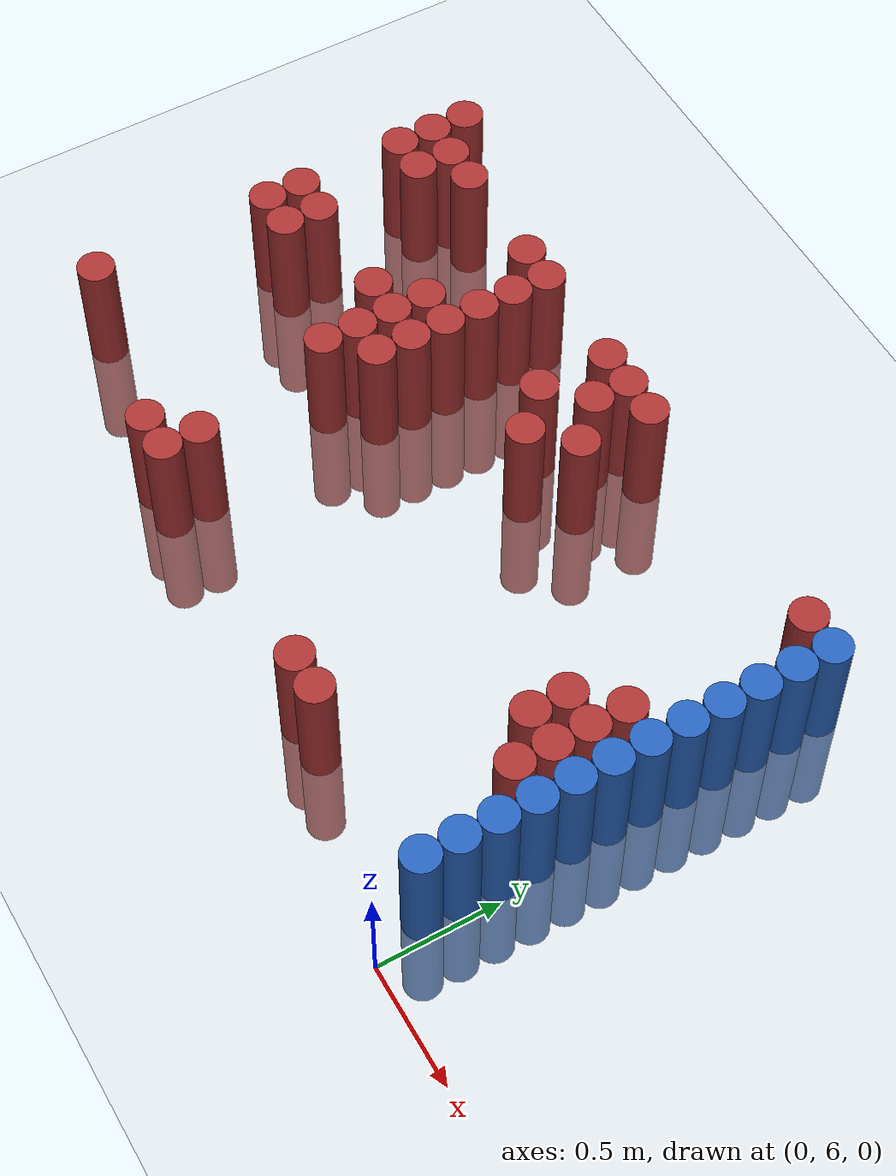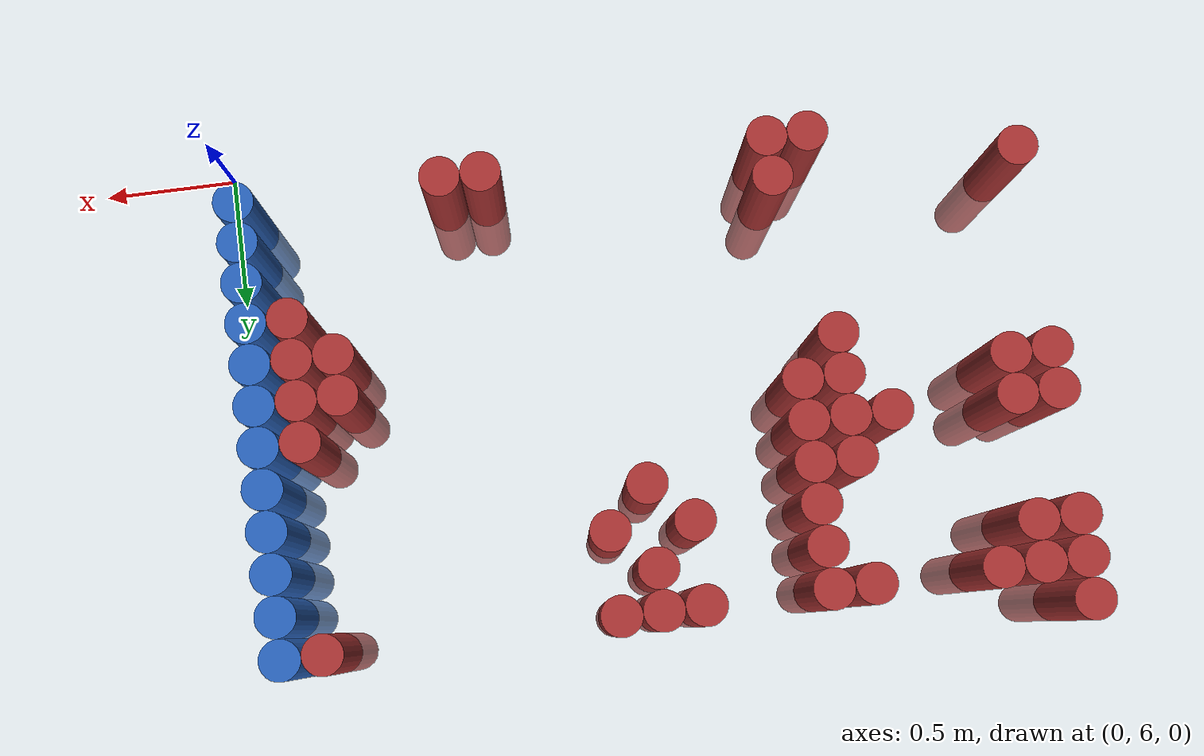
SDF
<sdf version="1.6">
 <world name="world_194">
  <model name="ground_plane">
   <static>1</static>
   <link name="link">
    <collision name="collision">
     <geometry><plane><normal>0 0 1</normal><size>100 100</size></plane></geometry>
     <surface><friction><ode><mu>100</mu><mu2>50</mu2></ode></friction></surface>
    </collision>
    <visual name="visual">
     <cast_shadows>0</cast_shadows>
     <geometry><plane><normal>0 0 1</normal><size>100 100</size></plane></geometry>
     <material>
      <script><uri>file://media/materials/scripts/gazebo.material</uri><name>Gazebo/Grey</name></script>
     </material>
    </visual>
   </link>
  </model>
  <model name="unit_cylinder_182">
   <static>1</static>
   <pose>-2.925000 6.375000 0.000000 0.000000 0.000000 0.000000</pose>
   <link name="link">
    <inertial>
     <mass>1</mass>
     <inertia><ixx>0.145833</ixx><ixy>0</ixy><ixz>0</ixz><iyy>0.145833</iyy><iyz>0</iyz><izz>0.125</izz></inertia>
    </inertial>
    <collision name="collision">
     <geometry><cylinder><radius>0.075000</radius><length>1</length></cylinder></geometry>
    </collision>
    <visual name="visual">
     <geometry><cylinder><radius>0.075000</radius><length>1</length></cylinder></geometry>
     <material>
      <ambient>0.648000 0.192000 0.192000 1</ambient>
      <diffuse>0.648000 0.192000 0.192000 1</diffuse>
     </material>
     <material>
      <script><name>Gazebo/Grey</name><uri>file://media/materials/scripts/gazebo.material</uri></script>
     </material>
    </visual>
   </link>
  </model>
  <model name="unit_cylinder_183">
   <static>1</static>
   <pose>-2.925000 7.125000 0.000000 0.000000 0.000000 0.000000</pose>
   <link name="link">
    <inertial>
     <mass>1</mass>
     <inertia><ixx>0.145833</ixx><ixy>0</ixy><ixz>0</ixz><iyy>0.145833</iyy><iyz>0</iyz><izz>0.125</izz></inertia>
    </inertial>
    <collision name="collision">
     <geometry><cylinder><radius>0.075000</radius><length>1</length></cylinder></geometry>
    </collision>
    <visual name="visual">
     <geometry><cylinder><radius>0.075000</radius><length>1</length></cylinder></geometry>
     <material>
      <ambient>0.648000 0.192000 0.192000 1</ambient>
      <diffuse>0.648000 0.192000 0.192000 1</diffuse>
     </material>
     <material>
      <script><name>Gazebo/Grey</name><uri>file://media/materials/scripts/gazebo.material</uri></script>
     </material>
    </visual>
   </link>
  </model>
  <model name="unit_cylinder_184">
   <static>1</static>
   <pose>-2.925000 7.275000 0.000000 0.000000 0.000000 0.000000</pose>
   <link name="link">
    <inertial>
     <mass>1</mass>
     <inertia><ixx>0.145833</ixx><ixy>0</ixy><ixz>0</ixz><iyy>0.145833</iyy><iyz>0</iyz><izz>0.125</izz></inertia>
    </inertial>
    <collision name="collision">
     <geometry><cylinder><radius>0.075000</radius><length>1</length></cylinder></geometry>
    </collision>
    <visual name="visual">
     <geometry><cylinder><radius>0.075000</radius><length>1</length></cylinder></geometry>
     <material>
      <ambient>0.648000 0.192000 0.192000 1</ambient>
      <diffuse>0.648000 0.192000 0.192000 1</diffuse>
     </material>
     <material>
      <script><name>Gazebo/Grey</name><uri>file://media/materials/scripts/gazebo.material</uri></script>
     </material>
    </visual>
   </link>
  </model>
  <model name="unit_cylinder_185">
   <static>1</static>
   <pose>-2.925000 7.725000 0.000000 0.000000 0.000000 0.000000</pose>
   <link name="link">
    <inertial>
     <mass>1</mass>
     <inertia><ixx>0.145833</ixx><ixy>0</ixy><ixz>0</ixz><iyy>0.145833</iyy><iyz>0</iyz><izz>0.125</izz></inertia>
    </inertial>
    <collision name="collision">
     <geometry><cylinder><radius>0.075000</radius><length>1</length></cylinder></geometry>
    </collision>
    <visual name="visual">
     <geometry><cylinder><radius>0.075000</radius><length>1</length></cylinder></geometry>
     <material>
      <ambient>0.648000 0.192000 0.192000 1</ambient>
      <diffuse>0.648000 0.192000 0.192000 1</diffuse>
     </material>
     <material>
      <script><name>Gazebo/Grey</name><uri>file://media/materials/scripts/gazebo.material</uri></script>
     </material>
    </visual>
   </link>
  </model>
  <model name="unit_cylinder_186">
   <static>1</static>
   <pose>-2.925000 7.875000 0.000000 0.000000 0.000000 0.000000</pose>
   <link name="link">
    <inertial>
     <mass>1</mass>
     <inertia><ixx>0.145833</ixx><ixy>0</ixy><ixz>0</ixz><iyy>0.145833</iyy><iyz>0</iyz><izz>0.125</izz></inertia>
    </inertial>
    <collision name="collision">
     <geometry><cylinder><radius>0.075000</radius><length>1</length></cylinder></geometry>
    </collision>
    <visual name="visual">
     <geometry><cylinder><radius>0.075000</radius><length>1</length></cylinder></geometry>
     <material>
      <ambient>0.648000 0.192000 0.192000 1</ambient>
      <diffuse>0.648000 0.192000 0.192000 1</diffuse>
     </material>
     <material>
      <script><name>Gazebo/Grey</name><uri>file://media/materials/scripts/gazebo.material</uri></script>
     </material>
    </visual>
   </link>
  </model>
  <model name="unit_cylinder_187">
   <static>1</static>
   <pose>-2.925000 8.025000 0.000000 0.000000 0.000000 0.000000</pose>
   <link name="link">
    <inertial>
     <mass>1</mass>
     <inertia><ixx>0.145833</ixx><ixy>0</ixy><ixz>0</ixz><iyy>0.145833</iyy><iyz>0</iyz><izz>0.125</izz></inertia>
    </inertial>
    <collision name="collision">
     <geometry><cylinder><radius>0.075000</radius><length>1</length></cylinder></geometry>
    </collision>
    <visual name="visual">
     <geometry><cylinder><radius>0.075000</radius><length>1</length></cylinder></geometry>
     <material>
      <ambient>0.648000 0.192000 0.192000 1</ambient>
      <diffuse>0.648000 0.192000 0.192000 1</diffuse>
     </material>
     <material>
      <script><name>Gazebo/Grey</name><uri>file://media/materials/scripts/gazebo.material</uri></script>
     </material>
    </visual>
   </link>
  </model>
  <model name="unit_cylinder_194">
   <static>1</static>
   <pose>-2.775000 7.125000 0.000000 0.000000 0.000000 0.000000</pose>
   <link name="link">
    <inertial>
     <mass>1</mass>
     <inertia><ixx>0.145833</ixx><ixy>0</ixy><ixz>0</ixz><iyy>0.145833</iyy><iyz>0</iyz><izz>0.125</izz></inertia>
    </inertial>
    <collision name="collision">
     <geometry><cylinder><radius>0.075000</radius><length>1</length></cylinder></geometry>
    </collision>
    <visual name="visual">
     <geometry><cylinder><radius>0.075000</radius><length>1</length></cylinder></geometry>
     <material>
      <ambient>0.648000 0.192000 0.192000 1</ambient>
      <diffuse>0.648000 0.192000 0.192000 1</diffuse>
     </material>
     <material>
      <script><name>Gazebo/Grey</name><uri>file://media/materials/scripts/gazebo.material</uri></script>
     </material>
    </visual>
   </link>
  </model>
  <model name="unit_cylinder_195">
   <static>1</static>
   <pose>-2.775000 7.275000 0.000000 0.000000 0.000000 0.000000</pose>
   <link name="link">
    <inertial>
     <mass>1</mass>
     <inertia><ixx>0.145833</ixx><ixy>0</ixy><ixz>0</ixz><iyy>0.145833</iyy><iyz>0</iyz><izz>0.125</izz></inertia>
    </inertial>
    <collision name="collision">
     <geometry><cylinder><radius>0.075000</radius><length>1</length></cylinder></geometry>
    </collision>
    <visual name="visual">
     <geometry><cylinder><radius>0.075000</radius><length>1</length></cylinder></geometry>
     <material>
      <ambient>0.648000 0.192000 0.192000 1</ambient>
      <diffuse>0.648000 0.192000 0.192000 1</diffuse>
     </material>
     <material>
      <script><name>Gazebo/Grey</name><uri>file://media/materials/scripts/gazebo.material</uri></script>
     </material>
    </visual>
   </link>
  </model>
  <model name="unit_cylinder_196">
   <static>1</static>
   <pose>-2.775000 7.725000 0.000000 0.000000 0.000000 0.000000</pose>
   <link name="link">
    <inertial>
     <mass>1</mass>
     <inertia><ixx>0.145833</ixx><ixy>0</ixy><ixz>0</ixz><iyy>0.145833</iyy><iyz>0</iyz><izz>0.125</izz></inertia>
    </inertial>
    <collision name="collision">
     <geometry><cylinder><radius>0.075000</radius><length>1</length></cylinder></geometry>
    </collision>
    <visual name="visual">
     <geometry><cylinder><radius>0.075000</radius><length>1</length></cylinder></geometry>
     <material>
      <ambient>0.648000 0.192000 0.192000 1</ambient>
      <diffuse>0.648000 0.192000 0.192000 1</diffuse>
     </material>
     <material>
      <script><name>Gazebo/Grey</name><uri>file://media/materials/scripts/gazebo.material</uri></script>
     </material>
    </visual>
   </link>
  </model>
  <model name="unit_cylinder_197">
   <static>1</static>
   <pose>-2.775000 7.875000 0.000000 0.000000 0.000000 0.000000</pose>
   <link name="link">
    <inertial>
     <mass>1</mass>
     <inertia><ixx>0.145833</ixx><ixy>0</ixy><ixz>0</ixz><iyy>0.145833</iyy><iyz>0</iyz><izz>0.125</izz></inertia>
    </inertial>
    <collision name="collision">
     <geometry><cylinder><radius>0.075000</radius><length>1</length></cylinder></geometry>
    </collision>
    <visual name="visual">
     <geometry><cylinder><radius>0.075000</radius><length>1</length></cylinder></geometry>
     <material>
      <ambient>0.648000 0.192000 0.192000 1</ambient>
      <diffuse>0.648000 0.192000 0.192000 1</diffuse>
     </material>
     <material>
      <script><name>Gazebo/Grey</name><uri>file://media/materials/scripts/gazebo.material</uri></script>
     </material>
    </visual>
   </link>
  </model>
  <model name="unit_cylinder_202">
   <static>1</static>
   <pose>-2.625000 7.875000 0.000000 0.000000 0.000000 0.000000</pose>
   <link name="link">
    <inertial>
     <mass>1</mass>
     <inertia><ixx>0.145833</ixx><ixy>0</ixy><ixz>0</ixz><iyy>0.145833</iyy><iyz>0</iyz><izz>0.125</izz></inertia>
    </inertial>
    <collision name="collision">
     <geometry><cylinder><radius>0.075000</radius><length>1</length></cylinder></geometry>
    </collision>
    <visual name="visual">
     <geometry><cylinder><radius>0.075000</radius><length>1</length></cylinder></geometry>
     <material>
      <ambient>0.648000 0.192000 0.192000 1</ambient>
      <diffuse>0.648000 0.192000 0.192000 1</diffuse>
     </material>
     <material>
      <script><name>Gazebo/Grey</name><uri>file://media/materials/scripts/gazebo.material</uri></script>
     </material>
    </visual>
   </link>
  </model>
  <model name="unit_cylinder_208">
   <static>1</static>
   <pose>-2.325000 7.275000 0.000000 0.000000 0.000000 0.000000</pose>
   <link name="link">
    <inertial>
     <mass>1</mass>
     <inertia><ixx>0.145833</ixx><ixy>0</ixy><ixz>0</ixz><iyy>0.145833</iyy><iyz>0</iyz><izz>0.125</izz></inertia>
    </inertial>
    <collision name="collision">
     <geometry><cylinder><radius>0.075000</radius><length>1</length></cylinder></geometry>
    </collision>
    <visual name="visual">
     <geometry><cylinder><radius>0.075000</radius><length>1</length></cylinder></geometry>
     <material>
      <ambient>0.648000 0.192000 0.192000 1</ambient>
      <diffuse>0.648000 0.192000 0.192000 1</diffuse>
     </material>
     <material>
      <script><name>Gazebo/Grey</name><uri>file://media/materials/scripts/gazebo.material</uri></script>
     </material>
    </visual>
   </link>
  </model>
  <model name="unit_cylinder_209">
   <static>1</static>
   <pose>-2.175000 6.225000 0.000000 0.000000 0.000000 0.000000</pose>
   <link name="link">
    <inertial>
     <mass>1</mass>
     <inertia><ixx>0.145833</ixx><ixy>0</ixy><ixz>0</ixz><iyy>0.145833</iyy><iyz>0</iyz><izz>0.125</izz></inertia>
    </inertial>
    <collision name="collision">
     <geometry><cylinder><radius>0.075000</radius><length>1</length></cylinder></geometry>
    </collision>
    <visual name="visual">
     <geometry><cylinder><radius>0.075000</radius><length>1</length></cylinder></geometry>
     <material>
      <ambient>0.648000 0.192000 0.192000 1</ambient>
      <diffuse>0.648000 0.192000 0.192000 1</diffuse>
     </material>
     <material>
      <script><name>Gazebo/Grey</name><uri>file://media/materials/scripts/gazebo.material</uri></script>
     </material>
    </visual>
   </link>
  </model>
  <model name="unit_cylinder_210">
   <static>1</static>
   <pose>-2.175000 6.975000 0.000000 0.000000 0.000000 0.000000</pose>
   <link name="link">
    <inertial>
     <mass>1</mass>
     <inertia><ixx>0.145833</ixx><ixy>0</ixy><ixz>0</ixz><iyy>0.145833</iyy><iyz>0</iyz><izz>0.125</izz></inertia>
    </inertial>
    <collision name="collision">
     <geometry><cylinder><radius>0.075000</radius><length>1</length></cylinder></geometry>
    </collision>
    <visual name="visual">
     <geometry><cylinder><radius>0.075000</radius><length>1</length></cylinder></geometry>
     <material>
      <ambient>0.648000 0.192000 0.192000 1</ambient>
      <diffuse>0.648000 0.192000 0.192000 1</diffuse>
     </material>
     <material>
      <script><name>Gazebo/Grey</name><uri>file://media/materials/scripts/gazebo.material</uri></script>
     </material>
    </visual>
   </link>
  </model>
  <model name="unit_cylinder_211">
   <static>1</static>
   <pose>-2.175000 7.125000 0.000000 0.000000 0.000000 0.000000</pose>
   <link name="link">
    <inertial>
     <mass>1</mass>
     <inertia><ixx>0.145833</ixx><ixy>0</ixy><ixz>0</ixz><iyy>0.145833</iyy><iyz>0</iyz><izz>0.125</izz></inertia>
    </inertial>
    <collision name="collision">
     <geometry><cylinder><radius>0.075000</radius><length>1</length></cylinder></geometry>
    </collision>
    <visual name="visual">
     <geometry><cylinder><radius>0.075000</radius><length>1</length></cylinder></geometry>
     <material>
      <ambient>0.648000 0.192000 0.192000 1</ambient>
      <diffuse>0.648000 0.192000 0.192000 1</diffuse>
     </material>
     <material>
      <script><name>Gazebo/Grey</name><uri>file://media/materials/scripts/gazebo.material</uri></script>
     </material>
    </visual>
   </link>
  </model>
  <model name="unit_cylinder_212">
   <static>1</static>
   <pose>-2.175000 7.275000 0.000000 0.000000 0.000000 0.000000</pose>
   <link name="link">
    <inertial>
     <mass>1</mass>
     <inertia><ixx>0.145833</ixx><ixy>0</ixy><ixz>0</ixz><iyy>0.145833</iyy><iyz>0</iyz><izz>0.125</izz></inertia>
    </inertial>
    <collision name="collision">
     <geometry><cylinder><radius>0.075000</radius><length>1</length></cylinder></geometry>
    </collision>
    <visual name="visual">
     <geometry><cylinder><radius>0.075000</radius><length>1</length></cylinder></geometry>
     <material>
      <ambient>0.648000 0.192000 0.192000 1</ambient>
      <diffuse>0.648000 0.192000 0.192000 1</diffuse>
     </material>
     <material>
      <script><name>Gazebo/Grey</name><uri>file://media/materials/scripts/gazebo.material</uri></script>
     </material>
    </visual>
   </link>
  </model>
  <model name="unit_cylinder_213">
   <static>1</static>
   <pose>-2.175000 7.425000 0.000000 0.000000 0.000000 0.000000</pose>
   <link name="link">
    <inertial>
     <mass>1</mass>
     <inertia><ixx>0.145833</ixx><ixy>0</ixy><ixz>0</ixz><iyy>0.145833</iyy><iyz>0</iyz><izz>0.125</izz></inertia>
    </inertial>
    <collision name="collision">
     <geometry><cylinder><radius>0.075000</radius><length>1</length></cylinder></geometry>
    </collision>
    <visual name="visual">
     <geometry><cylinder><radius>0.075000</radius><length>1</length></cylinder></geometry>
     <material>
      <ambient>0.648000 0.192000 0.192000 1</ambient>
      <diffuse>0.648000 0.192000 0.192000 1</diffuse>
     </material>
     <material>
      <script><name>Gazebo/Grey</name><uri>file://media/materials/scripts/gazebo.material</uri></script>
     </material>
    </visual>
   </link>
  </model>
  <model name="unit_cylinder_214">
   <static>1</static>
   <pose>-2.175000 7.875000 0.000000 0.000000 0.000000 0.000000</pose>
   <link name="link">
    <inertial>
     <mass>1</mass>
     <inertia><ixx>0.145833</ixx><ixy>0</ixy><ixz>0</ixz><iyy>0.145833</iyy><iyz>0</iyz><izz>0.125</izz></inertia>
    </inertial>
    <collision name="collision">
     <geometry><cylinder><radius>0.075000</radius><length>1</length></cylinder></geometry>
    </collision>
    <visual name="visual">
     <geometry><cylinder><radius>0.075000</radius><length>1</length></cylinder></geometry>
     <material>
      <ambient>0.648000 0.192000 0.192000 1</ambient>
      <diffuse>0.648000 0.192000 0.192000 1</diffuse>
     </material>
     <material>
      <script><name>Gazebo/Grey</name><uri>file://media/materials/scripts/gazebo.material</uri></script>
     </material>
    </visual>
   </link>
  </model>
  <model name="unit_cylinder_219">
   <static>1</static>
   <pose>-2.025000 6.225000 0.000000 0.000000 0.000000 0.000000</pose>
   <link name="link">
    <inertial>
     <mass>1</mass>
     <inertia><ixx>0.145833</ixx><ixy>0</ixy><ixz>0</ixz><iyy>0.145833</iyy><iyz>0</iyz><izz>0.125</izz></inertia>
    </inertial>
    <collision name="collision">
     <geometry><cylinder><radius>0.075000</radius><length>1</length></cylinder></geometry>
    </collision>
    <visual name="visual">
     <geometry><cylinder><radius>0.075000</radius><length>1</length></cylinder></geometry>
     <material>
      <ambient>0.648000 0.192000 0.192000 1</ambient>
      <diffuse>0.648000 0.192000 0.192000 1</diffuse>
     </material>
     <material>
      <script><name>Gazebo/Grey</name><uri>file://media/materials/scripts/gazebo.material</uri></script>
     </material>
    </visual>
   </link>
  </model>
  <model name="unit_cylinder_220">
   <static>1</static>
   <pose>-2.025000 6.375000 0.000000 0.000000 0.000000 0.000000</pose>
   <link name="link">
    <inertial>
     <mass>1</mass>
     <inertia><ixx>0.145833</ixx><ixy>0</ixy><ixz>0</ixz><iyy>0.145833</iyy><iyz>0</iyz><izz>0.125</izz></inertia>
    </inertial>
    <collision name="collision">
     <geometry><cylinder><radius>0.075000</radius><length>1</length></cylinder></geometry>
    </collision>
    <visual name="visual">
     <geometry><cylinder><radius>0.075000</radius><length>1</length></cylinder></geometry>
     <material>
      <ambient>0.648000 0.192000 0.192000 1</ambient>
      <diffuse>0.648000 0.192000 0.192000 1</diffuse>
     </material>
     <material>
      <script><name>Gazebo/Grey</name><uri>file://media/materials/scripts/gazebo.material</uri></script>
     </material>
    </visual>
   </link>
  </model>
  <model name="unit_cylinder_221">
   <static>1</static>
   <pose>-2.025000 7.125000 0.000000 0.000000 0.000000 0.000000</pose>
   <link name="link">
    <inertial>
     <mass>1</mass>
     <inertia><ixx>0.145833</ixx><ixy>0</ixy><ixz>0</ixz><iyy>0.145833</iyy><iyz>0</iyz><izz>0.125</izz></inertia>
    </inertial>
    <collision name="collision">
     <geometry><cylinder><radius>0.075000</radius><length>1</length></cylinder></geometry>
    </collision>
    <visual name="visual">
     <geometry><cylinder><radius>0.075000</radius><length>1</length></cylinder></geometry>
     <material>
      <ambient>0.648000 0.192000 0.192000 1</ambient>
      <diffuse>0.648000 0.192000 0.192000 1</diffuse>
     </material>
     <material>
      <script><name>Gazebo/Grey</name><uri>file://media/materials/scripts/gazebo.material</uri></script>
     </material>
    </visual>
   </link>
  </model>
  <model name="unit_cylinder_222">
   <static>1</static>
   <pose>-2.025000 7.275000 0.000000 0.000000 0.000000 0.000000</pose>
   <link name="link">
    <inertial>
     <mass>1</mass>
     <inertia><ixx>0.145833</ixx><ixy>0</ixy><ixz>0</ixz><iyy>0.145833</iyy><iyz>0</iyz><izz>0.125</izz></inertia>
    </inertial>
    <collision name="collision">
     <geometry><cylinder><radius>0.075000</radius><length>1</length></cylinder></geometry>
    </collision>
    <visual name="visual">
     <geometry><cylinder><radius>0.075000</radius><length>1</length></cylinder></geometry>
     <material>
      <ambient>0.648000 0.192000 0.192000 1</ambient>
      <diffuse>0.648000 0.192000 0.192000 1</diffuse>
     </material>
     <material>
      <script><name>Gazebo/Grey</name><uri>file://media/materials/scripts/gazebo.material</uri></script>
     </material>
    </visual>
   </link>
  </model>
  <model name="unit_cylinder_223">
   <static>1</static>
   <pose>-2.025000 7.425000 0.000000 0.000000 0.000000 0.000000</pose>
   <link name="link">
    <inertial>
     <mass>1</mass>
     <inertia><ixx>0.145833</ixx><ixy>0</ixy><ixz>0</ixz><iyy>0.145833</iyy><iyz>0</iyz><izz>0.125</izz></inertia>
    </inertial>
    <collision name="collision">
     <geometry><cylinder><radius>0.075000</radius><length>1</length></cylinder></geometry>
    </collision>
    <visual name="visual">
     <geometry><cylinder><radius>0.075000</radius><length>1</length></cylinder></geometry>
     <material>
      <ambient>0.648000 0.192000 0.192000 1</ambient>
      <diffuse>0.648000 0.192000 0.192000 1</diffuse>
     </material>
     <material>
      <script><name>Gazebo/Grey</name><uri>file://media/materials/scripts/gazebo.material</uri></script>
     </material>
    </visual>
   </link>
  </model>
  <model name="unit_cylinder_224">
   <static>1</static>
   <pose>-2.025000 7.575000 0.000000 0.000000 0.000000 0.000000</pose>
   <link name="link">
    <inertial>
     <mass>1</mass>
     <inertia><ixx>0.145833</ixx><ixy>0</ixy><ixz>0</ixz><iyy>0.145833</iyy><iyz>0</iyz><izz>0.125</izz></inertia>
    </inertial>
    <collision name="collision">
     <geometry><cylinder><radius>0.075000</radius><length>1</length></cylinder></geometry>
    </collision>
    <visual name="visual">
     <geometry><cylinder><radius>0.075000</radius><length>1</length></cylinder></geometry>
     <material>
      <ambient>0.648000 0.192000 0.192000 1</ambient>
      <diffuse>0.648000 0.192000 0.192000 1</diffuse>
     </material>
     <material>
      <script><name>Gazebo/Grey</name><uri>file://media/materials/scripts/gazebo.material</uri></script>
     </material>
    </visual>
   </link>
  </model>
  <model name="unit_cylinder_225">
   <static>1</static>
   <pose>-2.025000 7.725000 0.000000 0.000000 0.000000 0.000000</pose>
   <link name="link">
    <inertial>
     <mass>1</mass>
     <inertia><ixx>0.145833</ixx><ixy>0</ixy><ixz>0</ixz><iyy>0.145833</iyy><iyz>0</iyz><izz>0.125</izz></inertia>
    </inertial>
    <collision name="collision">
     <geometry><cylinder><radius>0.075000</radius><length>1</length></cylinder></geometry>
    </collision>
    <visual name="visual">
     <geometry><cylinder><radius>0.075000</radius><length>1</length></cylinder></geometry>
     <material>
      <ambient>0.648000 0.192000 0.192000 1</ambient>
      <diffuse>0.648000 0.192000 0.192000 1</diffuse>
     </material>
     <material>
      <script><name>Gazebo/Grey</name><uri>file://media/materials/scripts/gazebo.material</uri></script>
     </material>
    </visual>
   </link>
  </model>
  <model name="unit_cylinder_226">
   <static>1</static>
   <pose>-2.025000 7.875000 0.000000 0.000000 0.000000 0.000000</pose>
   <link name="link">
    <inertial>
     <mass>1</mass>
     <inertia><ixx>0.145833</ixx><ixy>0</ixy><ixz>0</ixz><iyy>0.145833</iyy><iyz>0</iyz><izz>0.125</izz></inertia>
    </inertial>
    <collision name="collision">
     <geometry><cylinder><radius>0.075000</radius><length>1</length></cylinder></geometry>
    </collision>
    <visual name="visual">
     <geometry><cylinder><radius>0.075000</radius><length>1</length></cylinder></geometry>
     <material>
      <ambient>0.648000 0.192000 0.192000 1</ambient>
      <diffuse>0.648000 0.192000 0.192000 1</diffuse>
     </material>
     <material>
      <script><name>Gazebo/Grey</name><uri>file://media/materials/scripts/gazebo.material</uri></script>
     </material>
    </visual>
   </link>
  </model>
  <model name="unit_cylinder_236">
   <static>1</static>
   <pose>-1.575000 7.575000 0.000000 0.000000 0.000000 0.000000</pose>
   <link name="link">
    <inertial>
     <mass>1</mass>
     <inertia><ixx>0.145833</ixx><ixy>0</ixy><ixz>0</ixz><iyy>0.145833</iyy><iyz>0</iyz><izz>0.125</izz></inertia>
    </inertial>
    <collision name="collision">
     <geometry><cylinder><radius>0.075000</radius><length>1</length></cylinder></geometry>
    </collision>
    <visual name="visual">
     <geometry><cylinder><radius>0.075000</radius><length>1</length></cylinder></geometry>
     <material>
      <ambient>0.648000 0.192000 0.192000 1</ambient>
      <diffuse>0.648000 0.192000 0.192000 1</diffuse>
     </material>
     <material>
      <script><name>Gazebo/Grey</name><uri>file://media/materials/scripts/gazebo.material</uri></script>
     </material>
    </visual>
   </link>
  </model>
  <model name="unit_cylinder_237">
   <static>1</static>
   <pose>-1.575000 7.875000 0.000000 0.000000 0.000000 0.000000</pose>
   <link name="link">
    <inertial>
     <mass>1</mass>
     <inertia><ixx>0.145833</ixx><ixy>0</ixy><ixz>0</ixz><iyy>0.145833</iyy><iyz>0</iyz><izz>0.125</izz></inertia>
    </inertial>
    <collision name="collision">
     <geometry><cylinder><radius>0.075000</radius><length>1</length></cylinder></geometry>
    </collision>
    <visual name="visual">
     <geometry><cylinder><radius>0.075000</radius><length>1</length></cylinder></geometry>
     <material>
      <ambient>0.648000 0.192000 0.192000 1</ambient>
      <diffuse>0.648000 0.192000 0.192000 1</diffuse>
     </material>
     <material>
      <script><name>Gazebo/Grey</name><uri>file://media/materials/scripts/gazebo.material</uri></script>
     </material>
    </visual>
   </link>
  </model>
  <model name="unit_cylinder_245">
   <static>1</static>
   <pose>-1.425000 7.425000 0.000000 0.000000 0.000000 0.000000</pose>
   <link name="link">
    <inertial>
     <mass>1</mass>
     <inertia><ixx>0.145833</ixx><ixy>0</ixy><ixz>0</ixz><iyy>0.145833</iyy><iyz>0</iyz><izz>0.125</izz></inertia>
    </inertial>
    <collision name="collision">
     <geometry><cylinder><radius>0.075000</radius><length>1</length></cylinder></geometry>
    </collision>
    <visual name="visual">
     <geometry><cylinder><radius>0.075000</radius><length>1</length></cylinder></geometry>
     <material>
      <ambient>0.648000 0.192000 0.192000 1</ambient>
      <diffuse>0.648000 0.192000 0.192000 1</diffuse>
     </material>
     <material>
      <script><name>Gazebo/Grey</name><uri>file://media/materials/scripts/gazebo.material</uri></script>
     </material>
    </visual>
   </link>
  </model>
  <model name="unit_cylinder_246">
   <static>1</static>
   <pose>-1.425000 7.725000 0.000000 0.000000 0.000000 0.000000</pose>
   <link name="link">
    <inertial>
     <mass>1</mass>
     <inertia><ixx>0.145833</ixx><ixy>0</ixy><ixz>0</ixz><iyy>0.145833</iyy><iyz>0</iyz><izz>0.125</izz></inertia>
    </inertial>
    <collision name="collision">
     <geometry><cylinder><radius>0.075000</radius><length>1</length></cylinder></geometry>
    </collision>
    <visual name="visual">
     <geometry><cylinder><radius>0.075000</radius><length>1</length></cylinder></geometry>
     <material>
      <ambient>0.648000 0.192000 0.192000 1</ambient>
      <diffuse>0.648000 0.192000 0.192000 1</diffuse>
     </material>
     <material>
      <script><name>Gazebo/Grey</name><uri>file://media/materials/scripts/gazebo.material</uri></script>
     </material>
    </visual>
   </link>
  </model>
  <model name="unit_cylinder_247">
   <static>1</static>
   <pose>-1.425000 7.875000 0.000000 0.000000 0.000000 0.000000</pose>
   <link name="link">
    <inertial>
     <mass>1</mass>
     <inertia><ixx>0.145833</ixx><ixy>0</ixy><ixz>0</ixz><iyy>0.145833</iyy><iyz>0</iyz><izz>0.125</izz></inertia>
    </inertial>
    <collision name="collision">
     <geometry><cylinder><radius>0.075000</radius><length>1</length></cylinder></geometry>
    </collision>
    <visual name="visual">
     <geometry><cylinder><radius>0.075000</radius><length>1</length></cylinder></geometry>
     <material>
      <ambient>0.648000 0.192000 0.192000 1</ambient>
      <diffuse>0.648000 0.192000 0.192000 1</diffuse>
     </material>
     <material>
      <script><name>Gazebo/Grey</name><uri>file://media/materials/scripts/gazebo.material</uri></script>
     </material>
    </visual>
   </link>
  </model>
  <model name="unit_cylinder_254">
   <static>1</static>
   <pose>-1.275000 7.575000 0.000000 0.000000 0.000000 0.000000</pose>
   <link name="link">
    <inertial>
     <mass>1</mass>
     <inertia><ixx>0.145833</ixx><ixy>0</ixy><ixz>0</ixz><iyy>0.145833</iyy><iyz>0</iyz><izz>0.125</izz></inertia>
    </inertial>
    <collision name="collision">
     <geometry><cylinder><radius>0.075000</radius><length>1</length></cylinder></geometry>
    </collision>
    <visual name="visual">
     <geometry><cylinder><radius>0.075000</radius><length>1</length></cylinder></geometry>
     <material>
      <ambient>0.648000 0.192000 0.192000 1</ambient>
      <diffuse>0.648000 0.192000 0.192000 1</diffuse>
     </material>
     <material>
      <script><name>Gazebo/Grey</name><uri>file://media/materials/scripts/gazebo.material</uri></script>
     </material>
    </visual>
   </link>
  </model>
  <model name="unit_cylinder_255">
   <static>1</static>
   <pose>-1.275000 7.875000 0.000000 0.000000 0.000000 0.000000</pose>
   <link name="link">
    <inertial>
     <mass>1</mass>
     <inertia><ixx>0.145833</ixx><ixy>0</ixy><ixz>0</ixz><iyy>0.145833</iyy><iyz>0</iyz><izz>0.125</izz></inertia>
    </inertial>
    <collision name="collision">
     <geometry><cylinder><radius>0.075000</radius><length>1</length></cylinder></geometry>
    </collision>
    <visual name="visual">
     <geometry><cylinder><radius>0.075000</radius><length>1</length></cylinder></geometry>
     <material>
      <ambient>0.648000 0.192000 0.192000 1</ambient>
      <diffuse>0.648000 0.192000 0.192000 1</diffuse>
     </material>
     <material>
      <script><name>Gazebo/Grey</name><uri>file://media/materials/scripts/gazebo.material</uri></script>
     </material>
    </visual>
   </link>
  </model>
  <model name="unit_cylinder_261">
   <static>1</static>
   <pose>-0.975000 6.225000 0.000000 0.000000 0.000000 0.000000</pose>
   <link name="link">
    <inertial>
     <mass>1</mass>
     <inertia><ixx>0.145833</ixx><ixy>0</ixy><ixz>0</ixz><iyy>0.145833</iyy><iyz>0</iyz><izz>0.125</izz></inertia>
    </inertial>
    <collision name="collision">
     <geometry><cylinder><radius>0.075000</radius><length>1</length></cylinder></geometry>
    </collision>
    <visual name="visual">
     <geometry><cylinder><radius>0.075000</radius><length>1</length></cylinder></geometry>
     <material>
      <ambient>0.648000 0.192000 0.192000 1</ambient>
      <diffuse>0.648000 0.192000 0.192000 1</diffuse>
     </material>
     <material>
      <script><name>Gazebo/Grey</name><uri>file://media/materials/scripts/gazebo.material</uri></script>
     </material>
    </visual>
   </link>
  </model>
  <model name="unit_cylinder_266">
   <static>1</static>
   <pose>-0.825000 6.225000 0.000000 0.000000 0.000000 0.000000</pose>
   <link name="link">
    <inertial>
     <mass>1</mass>
     <inertia><ixx>0.145833</ixx><ixy>0</ixy><ixz>0</ixz><iyy>0.145833</iyy><iyz>0</iyz><izz>0.125</izz></inertia>
    </inertial>
    <collision name="collision">
     <geometry><cylinder><radius>0.075000</radius><length>1</length></cylinder></geometry>
    </collision>
    <visual name="visual">
     <geometry><cylinder><radius>0.075000</radius><length>1</length></cylinder></geometry>
     <material>
      <ambient>0.648000 0.192000 0.192000 1</ambient>
      <diffuse>0.648000 0.192000 0.192000 1</diffuse>
     </material>
     <material>
      <script><name>Gazebo/Grey</name><uri>file://media/materials/scripts/gazebo.material</uri></script>
     </material>
    </visual>
   </link>
  </model>
  <model name="unit_cylinder_276">
   <static>1</static>
   <pose>-0.375000 6.825000 0.000000 0.000000 0.000000 0.000000</pose>
   <link name="link">
    <inertial>
     <mass>1</mass>
     <inertia><ixx>0.145833</ixx><ixy>0</ixy><ixz>0</ixz><iyy>0.145833</iyy><iyz>0</iyz><izz>0.125</izz></inertia>
    </inertial>
    <collision name="collision">
     <geometry><cylinder><radius>0.075000</radius><length>1</length></cylinder></geometry>
    </collision>
    <visual name="visual">
     <geometry><cylinder><radius>0.075000</radius><length>1</length></cylinder></geometry>
     <material>
      <ambient>0.648000 0.192000 0.192000 1</ambient>
      <diffuse>0.648000 0.192000 0.192000 1</diffuse>
     </material>
     <material>
      <script><name>Gazebo/Grey</name><uri>file://media/materials/scripts/gazebo.material</uri></script>
     </material>
    </visual>
   </link>
  </model>
  <model name="unit_cylinder_277">
   <static>1</static>
   <pose>-0.375000 6.975000 0.000000 0.000000 0.000000 0.000000</pose>
   <link name="link">
    <inertial>
     <mass>1</mass>
     <inertia><ixx>0.145833</ixx><ixy>0</ixy><ixz>0</ixz><iyy>0.145833</iyy><iyz>0</iyz><izz>0.125</izz></inertia>
    </inertial>
    <collision name="collision">
     <geometry><cylinder><radius>0.075000</radius><length>1</length></cylinder></geometry>
    </collision>
    <visual name="visual">
     <geometry><cylinder><radius>0.075000</radius><length>1</length></cylinder></geometry>
     <material>
      <ambient>0.648000 0.192000 0.192000 1</ambient>
      <diffuse>0.648000 0.192000 0.192000 1</diffuse>
     </material>
     <material>
      <script><name>Gazebo/Grey</name><uri>file://media/materials/scripts/gazebo.material</uri></script>
     </material>
    </visual>
   </link>
  </model>
  <model name="unit_cylinder_284">
   <static>1</static>
   <pose>-0.225000 6.675000 0.000000 0.000000 0.000000 0.000000</pose>
   <link name="link">
    <inertial>
     <mass>1</mass>
     <inertia><ixx>0.145833</ixx><ixy>0</ixy><ixz>0</ixz><iyy>0.145833</iyy><iyz>0</iyz><izz>0.125</izz></inertia>
    </inertial>
    <collision name="collision">
     <geometry><cylinder><radius>0.075000</radius><length>1</length></cylinder></geometry>
    </collision>
    <visual name="visual">
     <geometry><cylinder><radius>0.075000</radius><length>1</length></cylinder></geometry>
     <material>
      <ambient>0.648000 0.192000 0.192000 1</ambient>
      <diffuse>0.648000 0.192000 0.192000 1</diffuse>
     </material>
     <material>
      <script><name>Gazebo/Grey</name><uri>file://media/materials/scripts/gazebo.material</uri></script>
     </material>
    </visual>
   </link>
  </model>
  <model name="unit_cylinder_285">
   <static>1</static>
   <pose>-0.225000 6.825000 0.000000 0.000000 0.000000 0.000000</pose>
   <link name="link">
    <inertial>
     <mass>1</mass>
     <inertia><ixx>0.145833</ixx><ixy>0</ixy><ixz>0</ixz><iyy>0.145833</iyy><iyz>0</iyz><izz>0.125</izz></inertia>
    </inertial>
    <collision name="collision">
     <geometry><cylinder><radius>0.075000</radius><length>1</length></cylinder></geometry>
    </collision>
    <visual name="visual">
     <geometry><cylinder><radius>0.075000</radius><length>1</length></cylinder></geometry>
     <material>
      <ambient>0.648000 0.192000 0.192000 1</ambient>
      <diffuse>0.648000 0.192000 0.192000 1</diffuse>
     </material>
     <material>
      <script><name>Gazebo/Grey</name><uri>file://media/materials/scripts/gazebo.material</uri></script>
     </material>
    </visual>
   </link>
  </model>
  <model name="unit_cylinder_286">
   <static>1</static>
   <pose>-0.225000 6.975000 0.000000 0.000000 0.000000 0.000000</pose>
   <link name="link">
    <inertial>
     <mass>1</mass>
     <inertia><ixx>0.145833</ixx><ixy>0</ixy><ixz>0</ixz><iyy>0.145833</iyy><iyz>0</iyz><izz>0.125</izz></inertia>
    </inertial>
    <collision name="collision">
     <geometry><cylinder><radius>0.075000</radius><length>1</length></cylinder></geometry>
    </collision>
    <visual name="visual">
     <geometry><cylinder><radius>0.075000</radius><length>1</length></cylinder></geometry>
     <material>
      <ambient>0.648000 0.192000 0.192000 1</ambient>
      <diffuse>0.648000 0.192000 0.192000 1</diffuse>
     </material>
     <material>
      <script><name>Gazebo/Grey</name><uri>file://media/materials/scripts/gazebo.material</uri></script>
     </material>
    </visual>
   </link>
  </model>
  <model name="unit_cylinder_287">
   <static>1</static>
   <pose>-0.225000 7.125000 0.000000 0.000000 0.000000 0.000000</pose>
   <link name="link">
    <inertial>
     <mass>1</mass>
     <inertia><ixx>0.145833</ixx><ixy>0</ixy><ixz>0</ixz><iyy>0.145833</iyy><iyz>0</iyz><izz>0.125</izz></inertia>
    </inertial>
    <collision name="collision">
     <geometry><cylinder><radius>0.075000</radius><length>1</length></cylinder></geometry>
    </collision>
    <visual name="visual">
     <geometry><cylinder><radius>0.075000</radius><length>1</length></cylinder></geometry>
     <material>
      <ambient>0.648000 0.192000 0.192000 1</ambient>
      <diffuse>0.648000 0.192000 0.192000 1</diffuse>
     </material>
     <material>
      <script><name>Gazebo/Grey</name><uri>file://media/materials/scripts/gazebo.material</uri></script>
     </material>
    </visual>
   </link>
  </model>
  <model name="unit_cylinder_288">
   <static>1</static>
   <pose>-0.225000 7.875000 0.000000 0.000000 0.000000 0.000000</pose>
   <link name="link">
    <inertial>
     <mass>1</mass>
     <inertia><ixx>0.145833</ixx><ixy>0</ixy><ixz>0</ixz><iyy>0.145833</iyy><iyz>0</iyz><izz>0.125</izz></inertia>
    </inertial>
    <collision name="collision">
     <geometry><cylinder><radius>0.075000</radius><length>1</length></cylinder></geometry>
    </collision>
    <visual name="visual">
     <geometry><cylinder><radius>0.075000</radius><length>1</length></cylinder></geometry>
     <material>
      <ambient>0.648000 0.192000 0.192000 1</ambient>
      <diffuse>0.648000 0.192000 0.192000 1</diffuse>
     </material>
     <material>
      <script><name>Gazebo/Grey</name><uri>file://media/materials/scripts/gazebo.material</uri></script>
     </material>
    </visual>
   </link>
  </model>
  <model name="unit_cylinder_305">
   <static>1</static>
   <pose>-0.075000 6.225000 0.000000 0.000000 0.000000 0.000000</pose>
   <link name="link">
    <inertial>
     <mass>1</mass>
     <inertia><ixx>0.145833</ixx><ixy>0</ixy><ixz>0</ixz><iyy>0.145833</iyy><iyz>0</iyz><izz>0.125</izz></inertia>
    </inertial>
    <collision name="collision">
     <geometry><cylinder><radius>0.075000</radius><length>1</length></cylinder></geometry>
    </collision>
    <visual name="visual">
     <geometry><cylinder><radius>0.075000</radius><length>1</length></cylinder></geometry>
     <material>
      <ambient>0.152000 0.379000 0.720000 1</ambient>
      <diffuse>0.152000 0.379000 0.720000 1</diffuse>
     </material>
     <material>
      <script><name>Gazebo/Grey</name><uri>file://media/materials/scripts/gazebo.material</uri></script>
     </material>
    </visual>
   </link>
  </model>
  <model name="unit_cylinder_306">
   <static>1</static>
   <pose>-0.075000 6.375000 0.000000 0.000000 0.000000 0.000000</pose>
   <link name="link">
    <inertial>
     <mass>1</mass>
     <inertia><ixx>0.145833</ixx><ixy>0</ixy><ixz>0</ixz><iyy>0.145833</iyy><iyz>0</iyz><izz>0.125</izz></inertia>
    </inertial>
    <collision name="collision">
     <geometry><cylinder><radius>0.075000</radius><length>1</length></cylinder></geometry>
    </collision>
    <visual name="visual">
     <geometry><cylinder><radius>0.075000</radius><length>1</length></cylinder></geometry>
     <material>
      <ambient>0.152000 0.379000 0.720000 1</ambient>
      <diffuse>0.152000 0.379000 0.720000 1</diffuse>
     </material>
     <material>
      <script><name>Gazebo/Grey</name><uri>file://media/materials/scripts/gazebo.material</uri></script>
     </material>
    </visual>
   </link>
  </model>
  <model name="unit_cylinder_307">
   <static>1</static>
   <pose>-0.075000 6.525000 0.000000 0.000000 0.000000 0.000000</pose>
   <link name="link">
    <inertial>
     <mass>1</mass>
     <inertia><ixx>0.145833</ixx><ixy>0</ixy><ixz>0</ixz><iyy>0.145833</iyy><iyz>0</iyz><izz>0.125</izz></inertia>
    </inertial>
    <collision name="collision">
     <geometry><cylinder><radius>0.075000</radius><length>1</length></cylinder></geometry>
    </collision>
    <visual name="visual">
     <geometry><cylinder><radius>0.075000</radius><length>1</length></cylinder></geometry>
     <material>
      <ambient>0.152000 0.379000 0.720000 1</ambient>
      <diffuse>0.152000 0.379000 0.720000 1</diffuse>
     </material>
     <material>
      <script><name>Gazebo/Grey</name><uri>file://media/materials/scripts/gazebo.material</uri></script>
     </material>
    </visual>
   </link>
  </model>
  <model name="unit_cylinder_308">
   <static>1</static>
   <pose>-0.075000 6.675000 0.000000 0.000000 0.000000 0.000000</pose>
   <link name="link">
    <inertial>
     <mass>1</mass>
     <inertia><ixx>0.145833</ixx><ixy>0</ixy><ixz>0</ixz><iyy>0.145833</iyy><iyz>0</iyz><izz>0.125</izz></inertia>
    </inertial>
    <collision name="collision">
     <geometry><cylinder><radius>0.075000</radius><length>1</length></cylinder></geometry>
    </collision>
    <visual name="visual">
     <geometry><cylinder><radius>0.075000</radius><length>1</length></cylinder></geometry>
     <material>
      <ambient>0.152000 0.379000 0.720000 1</ambient>
      <diffuse>0.152000 0.379000 0.720000 1</diffuse>
     </material>
     <material>
      <script><name>Gazebo/Grey</name><uri>file://media/materials/scripts/gazebo.material</uri></script>
     </material>
    </visual>
   </link>
  </model>
  <model name="unit_cylinder_309">
   <static>1</static>
   <pose>-0.075000 6.825000 0.000000 0.000000 0.000000 0.000000</pose>
   <link name="link">
    <inertial>
     <mass>1</mass>
     <inertia><ixx>0.145833</ixx><ixy>0</ixy><ixz>0</ixz><iyy>0.145833</iyy><iyz>0</iyz><izz>0.125</izz></inertia>
    </inertial>
    <collision name="collision">
     <geometry><cylinder><radius>0.075000</radius><length>1</length></cylinder></geometry>
    </collision>
    <visual name="visual">
     <geometry><cylinder><radius>0.075000</radius><length>1</length></cylinder></geometry>
     <material>
      <ambient>0.152000 0.379000 0.720000 1</ambient>
      <diffuse>0.152000 0.379000 0.720000 1</diffuse>
     </material>
     <material>
      <script><name>Gazebo/Grey</name><uri>file://media/materials/scripts/gazebo.material</uri></script>
     </material>
    </visual>
   </link>
  </model>
  <model name="unit_cylinder_310">
   <static>1</static>
   <pose>-0.075000 6.975000 0.000000 0.000000 0.000000 0.000000</pose>
   <link name="link">
    <inertial>
     <mass>1</mass>
     <inertia><ixx>0.145833</ixx><ixy>0</ixy><ixz>0</ixz><iyy>0.145833</iyy><iyz>0</iyz><izz>0.125</izz></inertia>
    </inertial>
    <collision name="collision">
     <geometry><cylinder><radius>0.075000</radius><length>1</length></cylinder></geometry>
    </collision>
    <visual name="visual">
     <geometry><cylinder><radius>0.075000</radius><length>1</length></cylinder></geometry>
     <material>
      <ambient>0.152000 0.379000 0.720000 1</ambient>
      <diffuse>0.152000 0.379000 0.720000 1</diffuse>
     </material>
     <material>
      <script><name>Gazebo/Grey</name><uri>file://media/materials/scripts/gazebo.material</uri></script>
     </material>
    </visual>
   </link>
  </model>
  <model name="unit_cylinder_311">
   <static>1</static>
   <pose>-0.075000 7.125000 0.000000 0.000000 0.000000 0.000000</pose>
   <link name="link">
    <inertial>
     <mass>1</mass>
     <inertia><ixx>0.145833</ixx><ixy>0</ixy><ixz>0</ixz><iyy>0.145833</iyy><iyz>0</iyz><izz>0.125</izz></inertia>
    </inertial>
    <collision name="collision">
     <geometry><cylinder><radius>0.075000</radius><length>1</length></cylinder></geometry>
    </collision>
    <visual name="visual">
     <geometry><cylinder><radius>0.075000</radius><length>1</length></cylinder></geometry>
     <material>
      <ambient>0.152000 0.379000 0.720000 1</ambient>
      <diffuse>0.152000 0.379000 0.720000 1</diffuse>
     </material>
     <material>
      <script><name>Gazebo/Grey</name><uri>file://media/materials/scripts/gazebo.material</uri></script>
     </material>
    </visual>
   </link>
  </model>
  <model name="unit_cylinder_312">
   <static>1</static>
   <pose>-0.075000 7.275000 0.000000 0.000000 0.000000 0.000000</pose>
   <link name="link">
    <inertial>
     <mass>1</mass>
     <inertia><ixx>0.145833</ixx><ixy>0</ixy><ixz>0</ixz><iyy>0.145833</iyy><iyz>0</iyz><izz>0.125</izz></inertia>
    </inertial>
    <collision name="collision">
     <geometry><cylinder><radius>0.075000</radius><length>1</length></cylinder></geometry>
    </collision>
    <visual name="visual">
     <geometry><cylinder><radius>0.075000</radius><length>1</length></cylinder></geometry>
     <material>
      <ambient>0.152000 0.379000 0.720000 1</ambient>
      <diffuse>0.152000 0.379000 0.720000 1</diffuse>
     </material>
     <material>
      <script><name>Gazebo/Grey</name><uri>file://media/materials/scripts/gazebo.material</uri></script>
     </material>
    </visual>
   </link>
  </model>
  <model name="unit_cylinder_313">
   <static>1</static>
   <pose>-0.075000 7.425000 0.000000 0.000000 0.000000 0.000000</pose>
   <link name="link">
    <inertial>
     <mass>1</mass>
     <inertia><ixx>0.145833</ixx><ixy>0</ixy><ixz>0</ixz><iyy>0.145833</iyy><iyz>0</iyz><izz>0.125</izz></inertia>
    </inertial>
    <collision name="collision">
     <geometry><cylinder><radius>0.075000</radius><length>1</length></cylinder></geometry>
    </collision>
    <visual name="visual">
     <geometry><cylinder><radius>0.075000</radius><length>1</length></cylinder></geometry>
     <material>
      <ambient>0.152000 0.379000 0.720000 1</ambient>
      <diffuse>0.152000 0.379000 0.720000 1</diffuse>
     </material>
     <material>
      <script><name>Gazebo/Grey</name><uri>file://media/materials/scripts/gazebo.material</uri></script>
     </material>
    </visual>
   </link>
  </model>
  <model name="unit_cylinder_314">
   <static>1</static>
   <pose>-0.075000 7.575000 0.000000 0.000000 0.000000 0.000000</pose>
   <link name="link">
    <inertial>
     <mass>1</mass>
     <inertia><ixx>0.145833</ixx><ixy>0</ixy><ixz>0</ixz><iyy>0.145833</iyy><iyz>0</iyz><izz>0.125</izz></inertia>
    </inertial>
    <collision name="collision">
     <geometry><cylinder><radius>0.075000</radius><length>1</length></cylinder></geometry>
    </collision>
    <visual name="visual">
     <geometry><cylinder><radius>0.075000</radius><length>1</length></cylinder></geometry>
     <material>
      <ambient>0.152000 0.379000 0.720000 1</ambient>
      <diffuse>0.152000 0.379000 0.720000 1</diffuse>
     </material>
     <material>
      <script><name>Gazebo/Grey</name><uri>file://media/materials/scripts/gazebo.material</uri></script>
     </material>
    </visual>
   </link>
  </model>
  <model name="unit_cylinder_315">
   <static>1</static>
   <pose>-0.075000 7.725000 0.000000 0.000000 0.000000 0.000000</pose>
   <link name="link">
    <inertial>
     <mass>1</mass>
     <inertia><ixx>0.145833</ixx><ixy>0</ixy><ixz>0</ixz><iyy>0.145833</iyy><iyz>0</iyz><izz>0.125</izz></inertia>
    </inertial>
    <collision name="collision">
     <geometry><cylinder><radius>0.075000</radius><length>1</length></cylinder></geometry>
    </collision>
    <visual name="visual">
     <geometry><cylinder><radius>0.075000</radius><length>1</length></cylinder></geometry>
     <material>
      <ambient>0.152000 0.379000 0.720000 1</ambient>
      <diffuse>0.152000 0.379000 0.720000 1</diffuse>
     </material>
     <material>
      <script><name>Gazebo/Grey</name><uri>file://media/materials/scripts/gazebo.material</uri></script>
     </material>
    </visual>
   </link>
  </model>
  <model name="unit_cylinder_316">
   <static>1</static>
   <pose>-0.075000 7.875000 0.000000 0.000000 0.000000 0.000000</pose>
   <link name="link">
    <inertial>
     <mass>1</mass>
     <inertia><ixx>0.145833</ixx><ixy>0</ixy><ixz>0</ixz><iyy>0.145833</iyy><iyz>0</iyz><izz>0.125</izz></inertia>
    </inertial>
    <collision name="collision">
     <geometry><cylinder><radius>0.075000</radius><length>1</length></cylinder></geometry>
    </collision>
    <visual name="visual">
     <geometry><cylinder><radius>0.075000</radius><length>1</length></cylinder></geometry>
     <material>
      <ambient>0.152000 0.379000 0.720000 1</ambient>
      <diffuse>0.152000 0.379000 0.720000 1</diffuse>
     </material>
     <material>
      <script><name>Gazebo/Grey</name><uri>file://media/materials/scripts/gazebo.material</uri></script>
     </material>
    </visual>
   </link>
  </model>
 </world>
</sdf>
